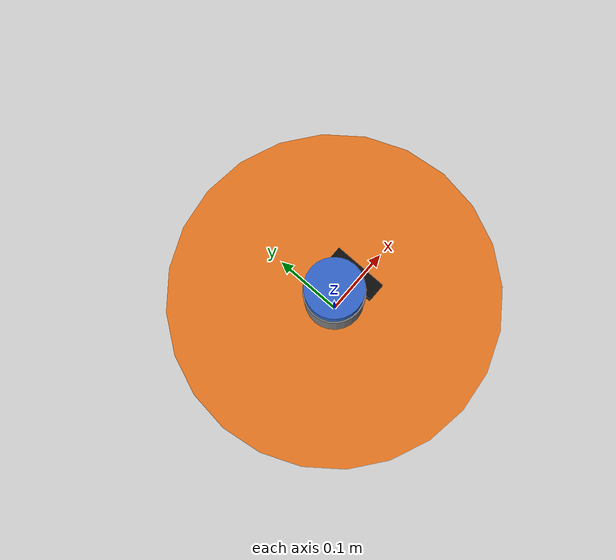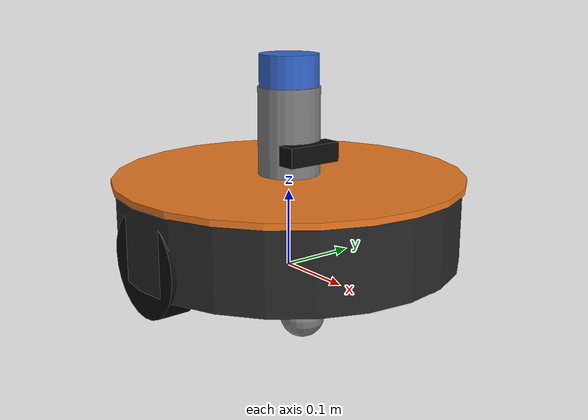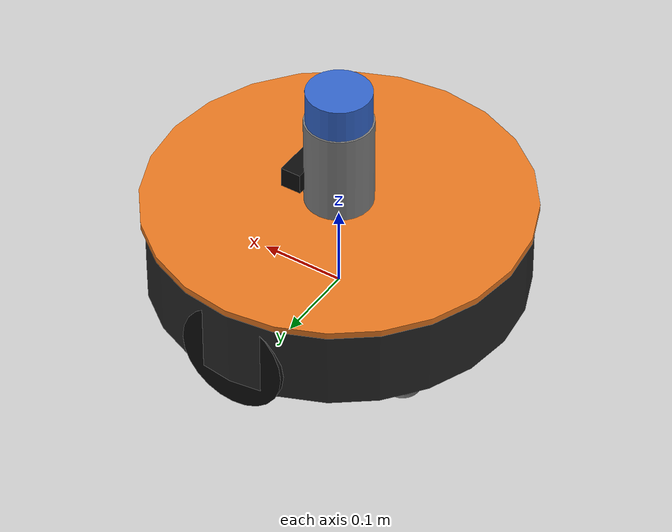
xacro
<?xml version="1.0"?>
<robot xmlns:xacro="http://www.ros.org/wiki/xacro" name="warenav_amr">

  <!-- ║              PARAMETERS                       ║ -->
  <xacro:property name="PI" value="3.14159265358979"/>

  <!-- Base (circular chassis like RB1) -->
  <xacro:property name="base_radius"  value="0.22"/>
  <xacro:property name="base_height"  value="0.10"/>
  <xacro:property name="base_mass"    value="8.0"/>

  <!-- Drive wheels -->
  <xacro:property name="wheel_radius" value="0.065"/>
  <xacro:property name="wheel_width"  value="0.04"/>
  <xacro:property name="wheel_mass"   value="0.5"/>
  <xacro:property name="wheel_y"      value="0.195"/>  <!-- half track width -->
  <xacro:property name="wheel_z"      value="-0.02"/>

  <!-- Caster -->
  <xacro:property name="caster_r"     value="0.025"/>
  <xacro:property name="caster_mass"  value="0.2"/>

  <!-- Sensor heights above base top -->
  <xacro:property name="lidar_z"      value="0.08"/>
  <xacro:property name="cam_z"        value="0.06"/>

  <!-- ║              MATERIALS                        ║ -->
  <material name="orange">  <color rgba="0.91 0.47 0.13 1.0"/> </material>
  <material name="dark">    <color rgba="0.15 0.15 0.15 1.0"/> </material>
  <material name="black">   <color rgba="0.05 0.05 0.05 1.0"/> </material>
  <material name="blue">    <color rgba="0.20 0.40 0.80 1.0"/> </material>
  <material name="white">   <color rgba="0.90 0.90 0.90 1.0"/> </material>
  <material name="gray">    <color rgba="0.50 0.50 0.50 1.0"/> </material>

  <!-- ║              INERTIA MACROS                   ║ -->
  <xacro:macro name="inertia_cylinder" params="m r h">
    <inertial>
      <mass value="${m}"/>
      <inertia ixx="${m*(3*r*r+h*h)/12}" ixy="0" ixz="0"
               iyy="${m*(3*r*r+h*h)/12}" iyz="0"
               izz="${m*r*r/2}"/>
    </inertial>
  </xacro:macro>

  <xacro:macro name="inertia_sphere" params="m r">
    <inertial>
      <mass value="${m}"/>
      <inertia ixx="${2*m*r*r/5}" ixy="0" ixz="0"
               iyy="${2*m*r*r/5}" iyz="0"
               izz="${2*m*r*r/5}"/>
    </inertial>
  </xacro:macro>

  <xacro:macro name="inertia_box" params="m x y z">
    <inertial>
      <mass value="${m}"/>
      <inertia ixx="${m*(y*y+z*z)/12}" ixy="0" ixz="0"
               iyy="${m*(x*x+z*z)/12}" iyz="0"
               izz="${m*(x*x+y*y)/12}"/>
    </inertial>
  </xacro:macro>

  <!-- ║         BASE FOOTPRINT & BASE LINK            ║ -->
  <link name="base_footprint"/>

  <joint name="base_footprint_joint" type="fixed">
    <parent link="base_footprint"/>
    <child  link="base_link"/>
    <origin xyz="0 0 ${wheel_radius}" rpy="0 0 0"/>
  </joint>

  <!-- Circular base (RB1-style) -->
  <link name="base_link">
    <visual>
      <geometry><cylinder radius="${base_radius}" length="${base_height}"/></geometry>
      <material name="dark"/>
    </visual>
    <collision>
      <geometry><cylinder radius="${base_radius}" length="${base_height}"/></geometry>
    </collision>
    <xacro:inertia_cylinder m="${base_mass}" r="${base_radius}" h="${base_height}"/>
  </link>

  <!-- Orange top ring (visual accent, like RB1) -->
  <link name="top_ring">
    <visual>
      <geometry><cylinder radius="${base_radius+0.005}" length="0.008"/></geometry>
      <material name="orange"/>
    </visual>
    <xacro:inertia_cylinder m="0.1" r="${base_radius}" h="0.008"/>
  </link>
  <joint name="top_ring_joint" type="fixed">
    <parent link="base_link"/>
    <child  link="top_ring"/>
    <origin xyz="0 0 ${base_height/2 + 0.004}" rpy="0 0 0"/>
  </joint>

  <!-- Sensor tower (vertical column) -->
  <link name="sensor_tower">
    <visual>
      <geometry><cylinder radius="0.04" length="0.12"/></geometry>
      <material name="gray"/>
    </visual>
    <collision>
      <geometry><cylinder radius="0.04" length="0.12"/></geometry>
    </collision>
    <xacro:inertia_cylinder m="0.2" r="0.04" h="0.12"/>
  </link>
  <joint name="sensor_tower_joint" type="fixed">
    <parent link="base_link"/>
    <child  link="sensor_tower"/>
    <origin xyz="0 0 ${base_height/2 + 0.06}" rpy="0 0 0"/>
  </joint>

  <!-- ║           DRIVE WHEELS (macro)                ║ -->
  <xacro:macro name="drive_wheel" params="side y_sign">
    <link name="${side}_wheel_link">
      <visual>
        <geometry><cylinder radius="${wheel_radius}" length="${wheel_width}"/></geometry>
        <material name="black"/>
      </visual>
      <collision>
        <geometry><cylinder radius="${wheel_radius}" length="${wheel_width}"/></geometry>
      </collision>
      <xacro:inertia_cylinder m="${wheel_mass}" r="${wheel_radius}" h="${wheel_width}"/>
    </link>
    <joint name="${side}_wheel_joint" type="continuous">
      <parent link="base_link"/>
      <child  link="${side}_wheel_link"/>
      <origin xyz="0 ${y_sign * wheel_y} ${wheel_z}" rpy="${PI/2} 0 0"/>
      <axis   xyz="0 0 -1"/>
      <dynamics damping="0.05" friction="0.1"/>
      <limit effort="20.0" velocity="5.0"/>
    </joint>
  </xacro:macro>

  <xacro:drive_wheel side="left"  y_sign="1"/>
  <xacro:drive_wheel side="right" y_sign="-1"/>

  <!-- ║                CASTERS                        ║ -->
  <xacro:macro name="caster" params="name x y">
    <link name="${name}_caster_link">
      <visual>
        <geometry><sphere radius="${caster_r}"/></geometry>
        <material name="gray"/>
      </visual>
      <collision>
        <geometry><sphere radius="${caster_r}"/></geometry>
      </collision>
      <xacro:inertia_sphere m="${caster_mass}" r="${caster_r}"/>
    </link>
    <joint name="${name}_caster_joint" type="fixed">
      <parent link="base_link"/>
      <child  link="${name}_caster_link"/>
      <origin xyz="${x} ${y} ${wheel_z - wheel_radius + caster_r}" rpy="0 0 0"/>
    </joint>
  </xacro:macro>

  <xacro:caster name="front_left"  x=" 0.15" y=" 0.1"/>
  <xacro:caster name="front_right" x=" 0.15" y="-0.1"/>
  <xacro:caster name="rear_left"   x="-0.15" y=" 0.1"/>
  <xacro:caster name="rear_right"  x="-0.15" y="-0.1"/>

  <!-- ║         LIDAR (RPLiDAR A1 — 360°)             ║ -->
  <link name="laser_link">
    <visual>
      <geometry><cylinder radius="0.038" length="0.041"/></geometry>
      <material name="blue"/>
    </visual>
    <collision>
      <geometry><cylinder radius="0.038" length="0.041"/></geometry>
    </collision>
    <xacro:inertia_cylinder m="0.17" r="0.038" h="0.041"/>
  </link>

  <joint name="laser_joint" type="fixed">
    <parent link="sensor_tower"/>
    <child  link="laser_link"/>
    <origin xyz="0 0 0.08" rpy="0 0 0"/>
  </joint>

  <!-- ║              IMU LINK                         ║ -->
  <link name="imu_link">
    <visual>
      <geometry><box size="0.025 0.025 0.004"/></geometry>
      <material name="blue"/>
    </visual>
    <xacro:inertia_box m="0.01" x="0.025" y="0.025" z="0.004"/>
  </link>
  <joint name="imu_joint" type="fixed">
    <parent link="base_link"/>
    <child  link="imu_link"/>
    <origin xyz="0.05 0 ${base_height/2 - 0.01}" rpy="0 0 0"/>
  </joint>

  <!-- ║         CAMERA (forward-facing)               ║ -->
  <link name="camera_link">
    <visual>
      <geometry><box size="0.025 0.075 0.025"/></geometry>
      <material name="black"/>
    </visual>
    <collision>
      <geometry><box size="0.025 0.075 0.025"/></geometry>
    </collision>
    <xacro:inertia_box m="0.05" x="0.025" y="0.075" z="0.025"/>
  </link>
  <joint name="camera_joint" type="fixed">
    <parent link="sensor_tower"/>
    <child  link="camera_link"/>
    <origin xyz="0.04 0 -0.02" rpy="0 0 0"/>
  </joint>

  <!-- Camera optical frame (ROS convention) -->
  <link name="camera_optical_frame"/>
  <joint name="camera_optical_joint" type="fixed">
    <parent link="camera_link"/>
    <child  link="camera_optical_frame"/>
    <origin xyz="0 0 0" rpy="${-PI/2} 0 ${-PI/2}"/>
  </joint>

  <!-- ║           GAZEBO PLUGINS                      ║ -->

  <!-- Differential Drive -->
  <gazebo>
    <plugin name="diff_drive_controller" filename="libgazebo_ros_diff_drive.so">
      <ros>
        <remapping>cmd_vel:=cmd_vel</remapping>
        <remapping>odom:=odom</remapping>
      </ros>
      <left_joint>left_wheel_joint</left_joint>
      <right_joint>right_wheel_joint</right_joint>
      <wheel_separation>${2 * wheel_y}</wheel_separation>
      <wheel_diameter>${2 * wheel_radius}</wheel_diameter>
      <max_wheel_torque>25</max_wheel_torque>
      <max_wheel_acceleration>2.0</max_wheel_acceleration>
      <publish_odom>true</publish_odom>
      <publish_odom_tf>true</publish_odom_tf>
      <publish_wheel_tf>false</publish_wheel_tf>
      <odometry_frame>odom</odometry_frame>
      <robot_base_frame>base_footprint</robot_base_frame>
      <update_rate>30</update_rate>
    </plugin>
  </gazebo>

  <!-- RPLiDAR A1 — 360° scan, 10 Hz, 12m range, Gaussian noise σ=0.02m -->
  <gazebo reference="laser_link">
    <material>Gazebo/Blue</material>
    <sensor name="lidar_sensor" type="ray">
      <always_on>true</always_on>
      <visualize>true</visualize>
      <update_rate>10</update_rate>
      <ray>
        <scan>
          <horizontal>
            <samples>360</samples>
            <resolution>1</resolution>
            <min_angle>-3.14159265</min_angle>
            <max_angle>3.14159265</max_angle>
          </horizontal>
        </scan>
        <range>
          <min>0.12</min>
          <max>12.0</max>
          <resolution>0.01</resolution>
        </range>
        <noise>
          <type>gaussian</type>
          <mean>0.0</mean>
          <stddev>0.02</stddev>
        </noise>
      </ray>
      <plugin name="lidar_plugin" filename="libgazebo_ros_ray_sensor.so">
        <ros><remapping>~/out:=scan</remapping></ros>
        <output_type>sensor_msgs/LaserScan</output_type>
        <frame_name>laser_link</frame_name>
      </plugin>
    </sensor>
  </gazebo>

  <!-- IMU — 100 Hz, noise matching MPU-9250 datasheet -->
  <gazebo reference="imu_link">
    <sensor name="imu_sensor" type="imu">
      <always_on>true</always_on>
      <update_rate>100</update_rate>
      <plugin name="imu_plugin" filename="libgazebo_ros_imu_sensor.so">
        <ros><remapping>~/out:=imu/data</remapping></ros>
        <initial_orientation_as_reference>false</initial_orientation_as_reference>
      </plugin>
      <imu>
        <angular_velocity>
          <x><noise type="gaussian"><mean>0.0</mean><stddev>0.009</stddev></noise></x>
          <y><noise type="gaussian"><mean>0.0</mean><stddev>0.009</stddev></noise></y>
          <z><noise type="gaussian"><mean>0.0</mean><stddev>0.009</stddev></noise></z>
        </angular_velocity>
        <linear_acceleration>
          <x><noise type="gaussian"><mean>0.0</mean><stddev>0.065</stddev></noise></x>
          <y><noise type="gaussian"><mean>0.0</mean><stddev>0.065</stddev></noise></y>
          <z><noise type="gaussian"><mean>0.0</mean><stddev>0.065</stddev></noise></z>
        </linear_acceleration>
      </imu>
    </sensor>
  </gazebo>

  <!-- Camera — 640×480 30fps -->
  <gazebo reference="camera_link">
    <sensor name="camera_sensor" type="camera">
      <always_on>true</always_on>
      <update_rate>30</update_rate>
      <visualize>true</visualize>
      <camera>
        <horizontal_fov>1.3962634</horizontal_fov>
        <image><width>640</width><height>480</height><format>R8G8B8</format></image>
        <clip><near>0.02</near><far>100</far></clip>
        <noise><type>gaussian</type><mean>0.0</mean><stddev>0.007</stddev></noise>
      </camera>
      <plugin name="camera_plugin" filename="libgazebo_ros_camera.so">
        <ros>
          <remapping>image_raw:=camera/image_raw</remapping>
          <remapping>camera_info:=camera/camera_info</remapping>
        </ros>
        <camera_name>camera</camera_name>
        <frame_name>camera_optical_frame</frame_name>
      </plugin>
    </sensor>
  </gazebo>

  <!-- Base materials and friction -->
  <gazebo reference="base_link">
    <material>Gazebo/DarkGrey</material>
    <mu1>0.8</mu1><mu2>0.8</mu2>
  </gazebo>
  <gazebo reference="left_wheel_link">
    <material>Gazebo/Black</material>
    <mu1>1.0</mu1><mu2>1.0</mu2>
    <kp>500000</kp><kd>10</kd>
  </gazebo>
  <gazebo reference="right_wheel_link">
    <material>Gazebo/Black</material>
    <mu1>1.0</mu1><mu2>1.0</mu2>
    <kp>500000</kp><kd>10</kd>
  </gazebo>
  <gazebo reference="front_left_caster_link">  <mu1>0.01</mu1><mu2>0.01</mu2></gazebo>
  <gazebo reference="front_right_caster_link"> <mu1>0.01</mu1><mu2>0.01</mu2></gazebo>
  <gazebo reference="rear_left_caster_link">   <mu1>0.01</mu1><mu2>0.01</mu2></gazebo>
  <gazebo reference="rear_right_caster_link">  <mu1>0.01</mu1><mu2>0.01</mu2></gazebo>

</robot>
